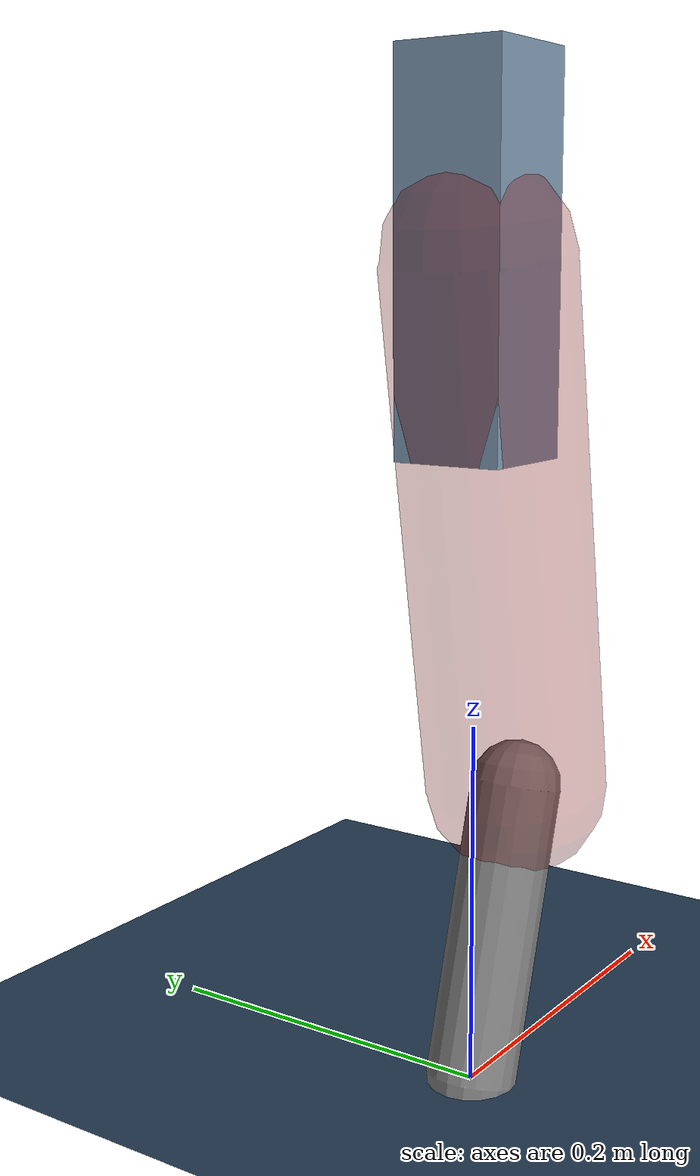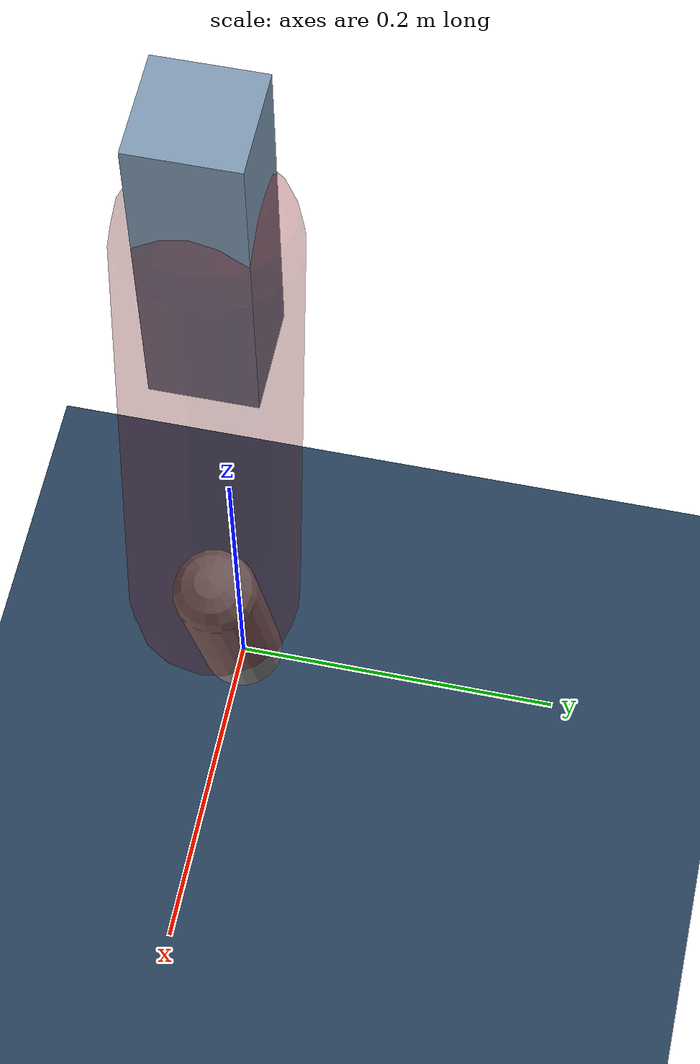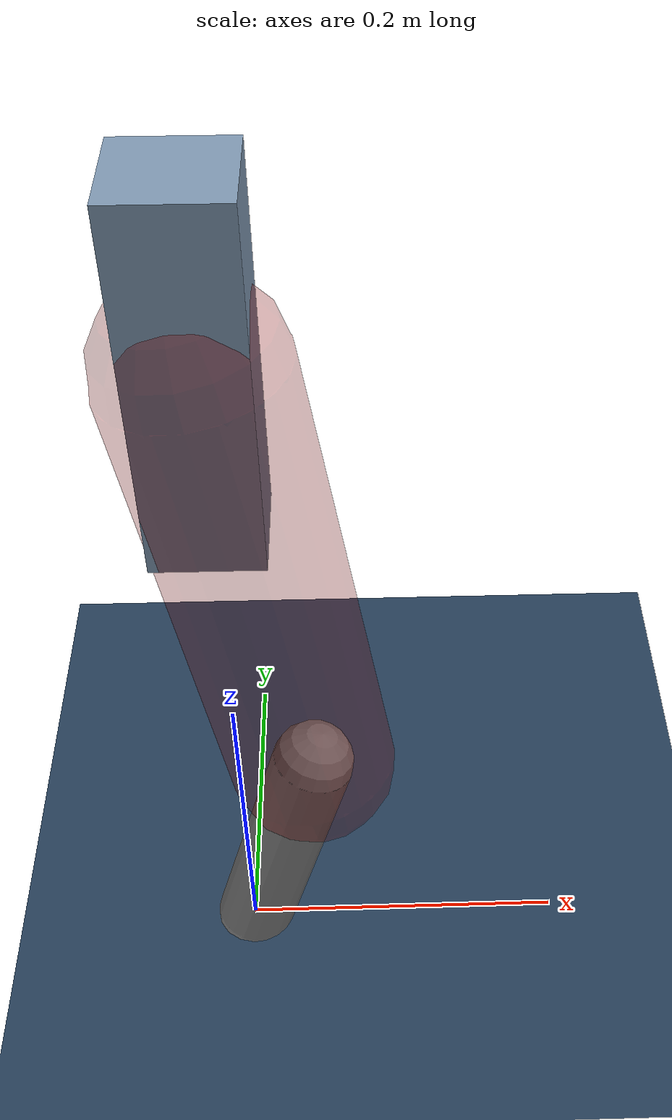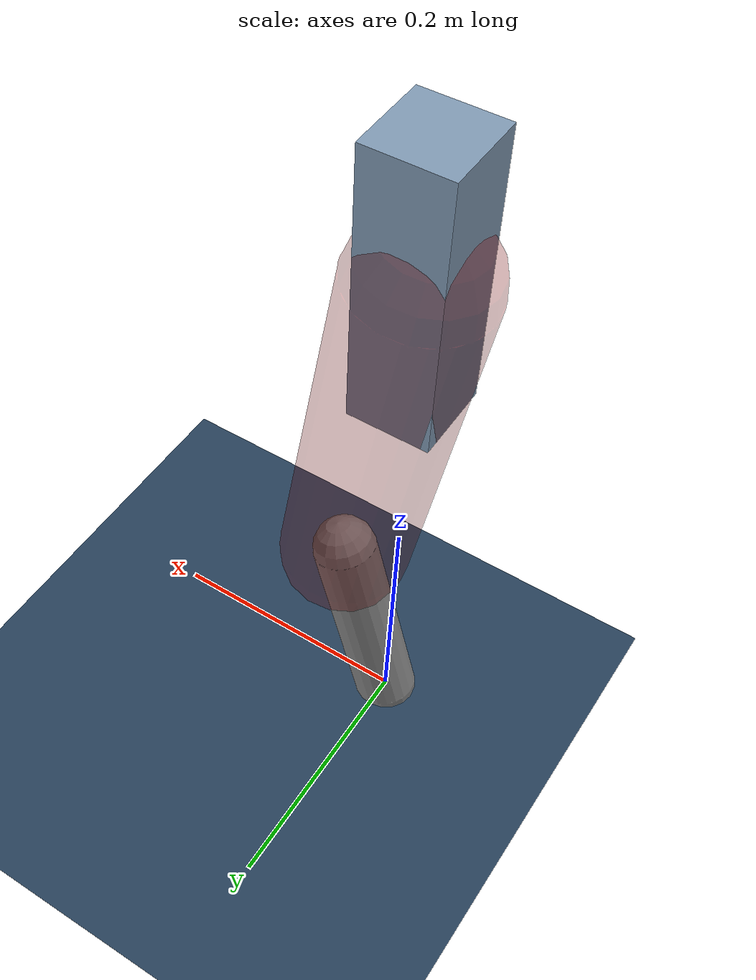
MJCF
<mujoco model="Hopper2D">
	<compiler inertiafromgeom="true" angle="radian" />
	<option timestep="0.001" integrator="implicit" cone="elliptic" solver="Newton" tolerance="1e-10" />

	<default>
		<geom contype="1" conaffinity="1" condim="3" friction="2 0.005 0.0001" solref="0.005 1" />
		<joint limited="true" damping="0.1" />
	</default>

	<asset>
		<texture name="skybox" type="skybox" builtin="gradient" rgb1=".4 .6 .8" rgb2="0 0 0" width="800" height="800" />
		<texture name="grid" type="2d" builtin="checker" rgb1=".1 .2 .3" rgb2=".2 .3 .4" width="300" height="300" mark="edge" markrgb=".2 .3 .4" />
		<material name="ground" texture="grid" texrepeat="1 1" texuniform="true" reflectance="0.1" />
		<material name="leg" rgba="0.5 0.6 0.7 1" />
	</asset>

	<worldbody>

		<geom name="floor" type="plane" size="5 5 0.25" material="ground" />

		<light directional="false" diffuse="0.8 0.8 0.8" specular="0.3 0.3 0.3" pos="0 0 2" dir="0 0 -1" />
		<light mode="targetbodycom" target="base" directional="false" diffuse="0.8 0.8 0.8" specular="0.3 0.3 0.3" pos="0 0 2" dir="0 0 -1" />

		<camera name="fixed" pos="0 -2 1" xyaxes="1 0 0 0 0 1" />
		<camera name="tracking" mode="trackcom" pos="0 -3 1" />

		<body name="root" pos="0 0 0.4402888039269574">
			<joint name="slide_x" type="slide" axis="1 0 0" range="-100 100" />
			<joint name="slide_z" type="slide" axis="0 0 1" range="0 10" />

			<body name="base" pos="0 0 0">
				<geom name="torso" type="box" size="0.03 0.03 0.1" mass="3.8419999999999996" material="leg" />

				<body name="link1" pos="0 0 0" euler="0 1.4126053882599556 0">
					<joint type="hinge" axis="0 -1 0" pos="0 0 0" name="hinge1" limited="true" range="-3.14 3.14" stiffness="0" damping="0.1" />
					<geom name="thigh" type="capsule" fromto="0 0 0 0.2873294985172133 0 0" size="0.05" rgba="0.5 0 0 0.3" mass="0.9546896459964759" />

					<body name="link2" pos="0.2873294985172133 0 0" euler="0 0.43965257987611805 0">
						<joint type="hinge" axis="0 -1 0" pos="0 0 0" name="hinge2" limited="true" range="-3.14 3.14" stiffness="0" damping="0.1" />
						<geom name="shank" type="capsule" fromto="0 0 0 0.16295930540974413 0 0" size="0.025" mass="0.36916337486876966" />

					</body>
				</body>
			</body>
		</body>
	</worldbody>

	<actuator>
		<motor name="torque1" joint="hinge1" ctrlrange="-201.52201361581945 201.52201361581945" ctrllimited="true" gear="1" />
		<motor name="torque2" joint="hinge2" ctrlrange="-131.00829571675504 131.00829571675504" ctrllimited="true" gear="1" />
	</actuator>
</mujoco>
